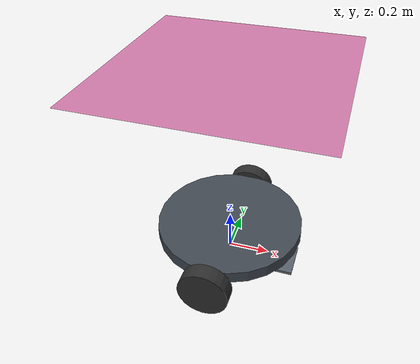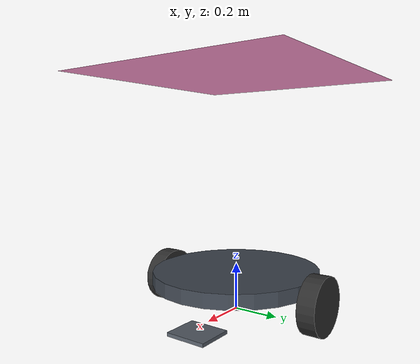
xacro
<?xml version="1.0"?>
<robot name="cv_robot">
  <link name="base_footprint"/>
  <joint name="base_joint" type="fixed">
    <parent link="base_footprint"/>
    <child link="base_link"/>
    <origin xyz="0 0 0.15" rpy="0 0 0"/>
  </joint>

  <material name="chassis">     <color rgba="0.25 0.28 0.32 1"/></material>
  <material name="dark_rubber"> <color rgba="0.18 0.18 0.18 1"/></material>
  <material name="top_cap">     <color rgba="0.35 0.38 0.42 1"/></material>

  <!-- Main chassis (cylinder) -->
  <link name="base_link">
    <visual>
      <geometry>
        <cylinder radius="0.36" length="0.06"/>
      </geometry>
      <material name="chassis"/>
    </visual>
    <collision>
      <geometry>
        <cylinder radius="0.36" length="0.06"/>
      </geometry>
    </collision>
    <inertial>
      <mass value="10.8"/>
      <inertia ixx="0.486" ixy="0" ixz="0" iyy="0.486" iyz="0" izz="0.729"/>
    </inertial>
  </link>

  <!-- Left wheel -->
  <link name="left_wheel">
    <visual>
      <origin xyz="0 0 0" rpy="1.5708 0 0"/>
      <geometry><cylinder radius="0.12" length="0.075"/></geometry>
      <material name="dark_rubber"/>
    </visual>
    <collision>
      <origin xyz="0 0 0" rpy="1.5708 0 0"/>
      <geometry><cylinder radius="0.12" length="0.075"/></geometry>
    </collision>
    <inertial>
      <mass value="0.72"/>
      <inertia ixx="0.0045" ixy="0" ixz="0" iyy="0.0045" iyz="0" izz="0.0045"/>
    </inertial>
  </link>
  <joint name="left_wheel_joint" type="continuous">
    <parent link="base_link"/>
    <child link="left_wheel"/>
    <origin xyz="0 0.39 -0.06" rpy="0 0 0"/>
    <axis xyz="0 1 0"/>
  </joint>

  <!-- Right wheel -->
  <link name="right_wheel">
    <visual>
      <origin xyz="0 0 0" rpy="1.5708 0 0"/>
      <geometry><cylinder radius="0.12" length="0.075"/></geometry>
      <material name="dark_rubber"/>
    </visual>
    <collision>
      <origin xyz="0 0 0" rpy="1.5708 0 0"/>
      <geometry><cylinder radius="0.12" length="0.075"/></geometry>
    </collision>
    <inertial>
      <mass value="0.72"/>
      <inertia ixx="0.0045" ixy="0" ixz="0" iyy="0.0045" iyz="0" izz="0.0045"/>
    </inertial>
  </link>
  <joint name="right_wheel_joint" type="continuous">
    <parent link="base_link"/>
    <child link="right_wheel"/>
    <origin xyz="0 -0.39 -0.06" rpy="0 0 0"/>
    <axis xyz="0 1 0"/>
  </joint>

  <!-- Skid plate rear (fore/aft stability support) -->
  <link name="skid_plate">
    <visual>
      <geometry><box size="0.15 0.18 0.015"/></geometry>
      <material name="top_cap"/>
    </visual>
    <collision>
      <geometry><box size="0.15 0.18 0.015"/></geometry>
    </collision>
    <inertial>
      <mass value="0.18"/>
      <inertia ixx="0.00003" ixy="0" ixz="0" iyy="0.00003" iyz="0" izz="0.00003"/>
    </inertial>
  </link>
  <joint name="skid_joint" type="fixed">
    <parent link="base_link"/>
    <child link="skid_plate"/>
    <origin xyz="-0.27 0 -0.1725" rpy="0 0 0"/>
  </joint>

  <!-- Skid plate front (fore/aft stability support) -->
  <link name="skid_plate_front">
    <visual>
      <geometry><box size="0.15 0.18 0.015"/></geometry>
      <material name="top_cap"/>
    </visual>
    <collision>
      <geometry><box size="0.15 0.18 0.015"/></geometry>
    </collision>
    <inertial>
      <mass value="0.18"/>
      <inertia ixx="0.00003" ixy="0" ixz="0" iyy="0.00003" iyz="0" izz="0.00003"/>
    </inertial>
  </link>
  <joint name="skid_joint_front" type="fixed">
    <parent link="base_link"/>
    <child link="skid_plate_front"/>
    <origin xyz="0.27 0 -0.1725" rpy="0 0 0"/>
  </joint>

  <!-- Friction tuning -->
  <gazebo reference="skid_plate">
    <mu1>0.1</mu1><mu2>0.1</mu2>
  </gazebo>
  <gazebo reference="skid_plate_front">
    <mu1>0.1</mu1><mu2>0.1</mu2>
  </gazebo>
  <gazebo reference="left_wheel">
    <mu1>1.0</mu1><mu2>1.0</mu2>
  </gazebo>
  <gazebo reference="right_wheel">
    <mu1>1.0</mu1><mu2>1.0</mu2>
  </gazebo>

  <!-- Pose publisher -->
  <gazebo>
    <plugin filename="gz-sim-pose-publisher-system"
            name="gz::sim::systems::PosePublisher">
      <publish_model_pose>true</publish_model_pose>
      <publish_link_pose>false</publish_link_pose>
      <update_frequency>30</update_frequency>
    </plugin>
  </gazebo>

  <!-- Differential drive -->
  <gazebo>
    <plugin filename="gz-sim-diff-drive-system"
            name="gz::sim::systems::DiffDrive">
      <left_joint>left_wheel_joint</left_joint>
      <right_joint>right_wheel_joint</right_joint>
      <wheel_separation>0.78</wheel_separation>
      <wheel_diameter>0.24</wheel_diameter>
      <max_linear_acceleration>1.0</max_linear_acceleration>
      <max_angular_acceleration>2.0</max_angular_acceleration>
      <max_linear_velocity>1.0</max_linear_velocity>
      <max_angular_velocity>2.0</max_angular_velocity>
      <topic>cmd_vel</topic>
      <odom_topic>odom</odom_topic>
      <tf_topic>tf</tf_topic>
      <frame_id>odom</frame_id>
      <child_frame_id>base_link</child_frame_id>
      <odom_publisher_frequency>30</odom_publisher_frequency>
    </plugin>
  </gazebo>

  <!-- ArUco marker (overhead-camera localization ground truth) -->
  <link name="aruco_marker_link">
    <visual>
      <geometry>
        <mesh filename="package://cv_robot/materials/meshes/aruco_marker.obj" scale="1 1 1"/>
      </geometry>
    </visual>
    <collision>
      <geometry>
        <box size="0.05 0.05 0.001"/>
      </geometry>
    </collision>
    <inertial>
      <mass value="0.001"/>
      <inertia ixx="2.1e-7" ixy="0" ixz="0" iyy="2.1e-7" iyz="0" izz="4.1e-7"/>
    </inertial>
  </link>
  <joint name="aruco_marker_joint" type="fixed">
    <parent link="base_link"/>
    <child link="aruco_marker_link"/>
    <origin xyz="0.0 0.0 0.85" rpy="0 0 0"/>
  </joint>

</robot>
